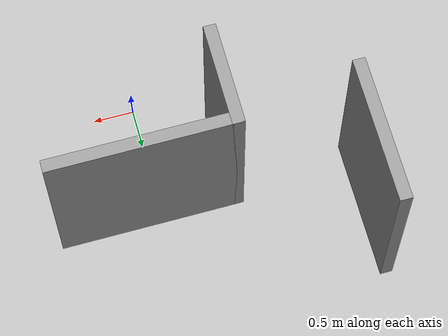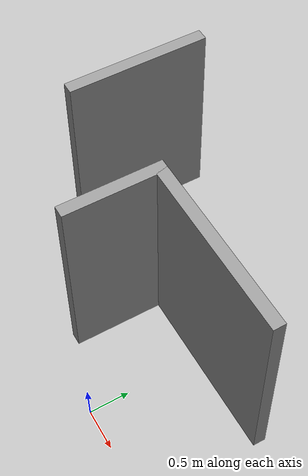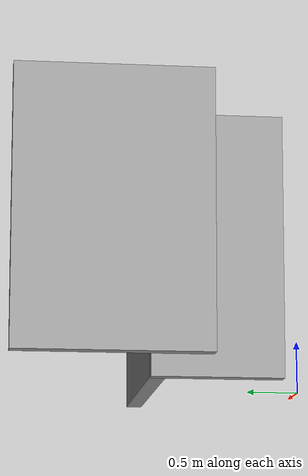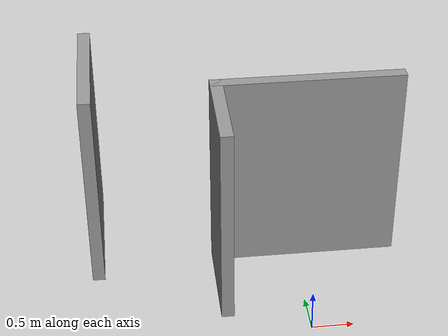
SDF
<?xml version='1.0'?>
<sdf version='1.7'>
  <model name='building_0'>
    <pose>-0.626352 1.45312 0 0 -0 0</pose>
    <link name='Wall_0'>
      <collision name='Wall_0_Collision'>
        <geometry>
          <box>
            <size>1.25 0.15 2.5</size>
          </box>
        </geometry>
        <pose>0 0 1.25 0 -0 0</pose>
      </collision>
      <visual name='Wall_0_Visual'>
        <pose>0 0 1.25 0 -0 0</pose>
        <geometry>
          <box>
            <size>1.25 0.15 2.5</size>
          </box>
        </geometry>
        <material>
          <script>
            <uri>file://media/materials/scripts/gazebo.material</uri>
            <name>Gazebo/Grey</name>
          </script>
          <ambient>1 1 1 1</ambient>
        </material>
        <meta>
          <layer>0</layer>
        </meta>
      </visual>
      <pose>-0.323023 -0.526245 0 0 -0 -1.5708</pose>
    </link>
    <link name='Wall_4'>
      <collision name='Wall_4_Collision'>
        <geometry>
          <box>
            <size>2.2875 0.15 2.5</size>
          </box>
        </geometry>
        <pose>0 0 1.25 0 -0 0</pose>
      </collision>
      <visual name='Wall_4_Visual'>
        <pose>0 0 1.25 0 -0 0</pose>
        <geometry>
          <box>
            <size>2.2875 0.15 2.5</size>
          </box>
        </geometry>
        <material>
          <script>
            <uri>file://media/materials/scripts/gazebo.material</uri>
            <name>Gazebo/Grey</name>
          </script>
          <ambient>1 1 1 1</ambient>
        </material>
        <meta>
          <layer>0</layer>
        </meta>
      </visual>
      <pose>0.758227 0.023755 0 0 -0 0</pose>
    </link>
    <link name='Wall_6'>
      <collision name='Wall_6_Collision'>
        <geometry>
          <box>
            <size>1.75 0.15 2.5</size>
          </box>
        </geometry>
        <pose>0 0 1.25 0 -0 0</pose>
      </collision>
      <visual name='Wall_6_Visual'>
        <pose>0 0 1.25 0 -0 0</pose>
        <geometry>
          <box>
            <size>1.75 0.15 2.5</size>
          </box>
        </geometry>
        <material>
          <script>
            <uri>file://media/materials/scripts/gazebo.material</uri>
            <name>Gazebo/Grey</name>
          </script>
          <ambient>1 1 1 1</ambient>
        </material>
        <meta>
          <layer>0</layer>
        </meta>
      </visual>
      <pose>-1.82698 0.57812 0 0 -0 1.5708</pose>
    </link>
    <static>1</static>
  </model>
</sdf>
